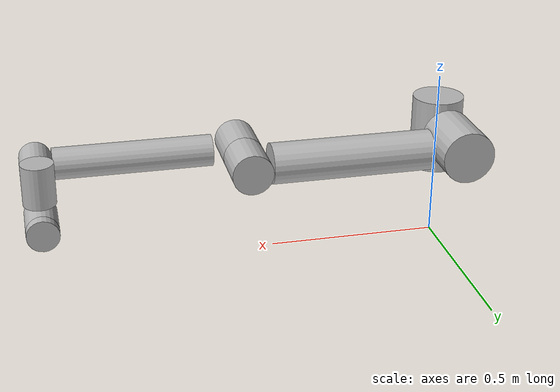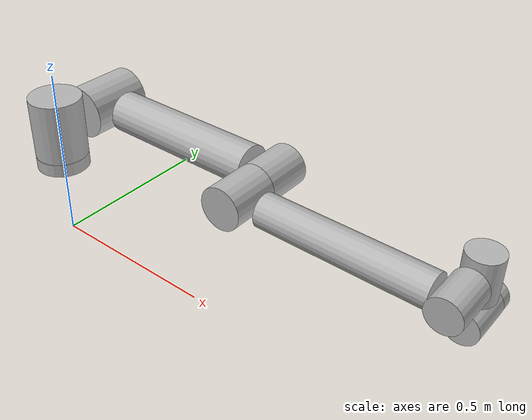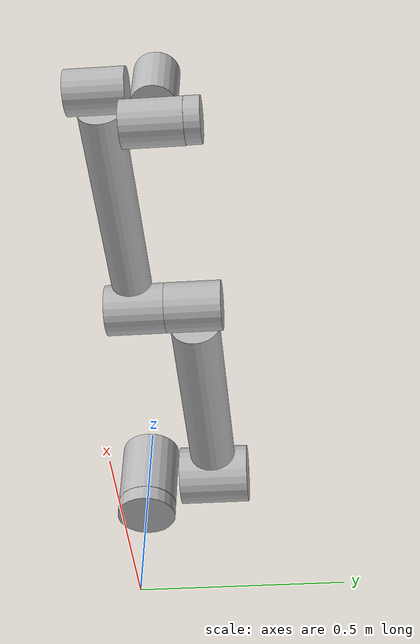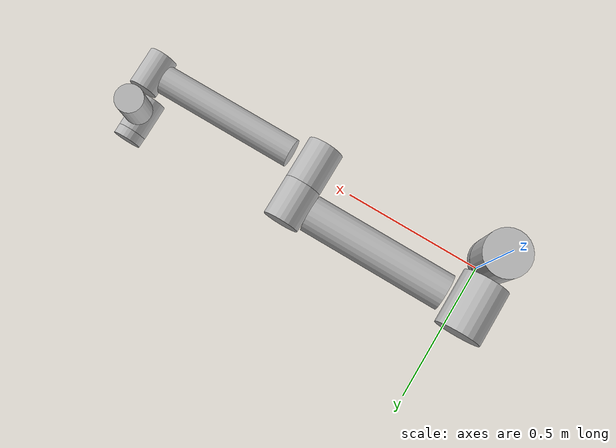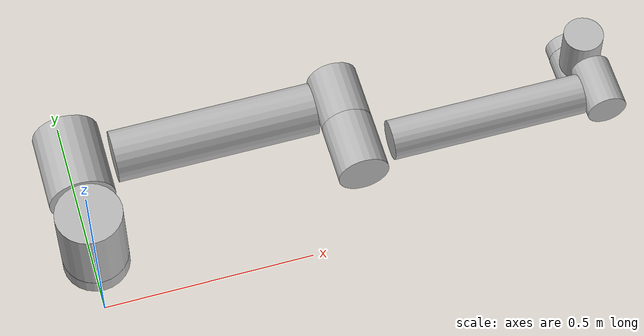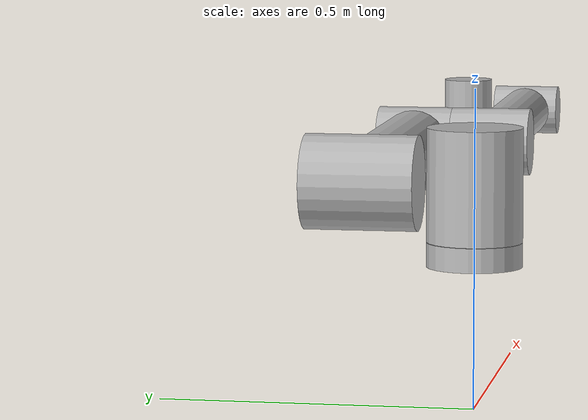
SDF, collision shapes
<?xml version='1.0'?>
<sdf version='1.5'>
  <model name='ur10'>
    <pose>0 0 0.225 0 -0 0</pose>
    <link name='base'>
      <inertial>
        <mass>4</mass>
        <inertia>
          <ixx>0.00610633</ixx>
          <ixy>0</ixy>
          <ixz>0</ixz>
          <iyy>0.00610633</iyy>
          <iyz>0</iyz>
          <izz>0.01125</izz>
        </inertia>
      </inertial>
      <collision name='collision'>
        <pose>0 0 0.019 0 -0 0</pose>
        <geometry>
          <cylinder>
            <radius>0.075</radius>
            <length>0.038</length>
          </cylinder>
        </geometry>
      </collision>
      <visual name='visual'>
        <geometry>
          <mesh>
            <uri>/home/ubb/Documents/PersonalProject/install/simple_arm/share/simple_arm/models/ur10/meshes/visual/base.dae</uri>
          </mesh>
        </geometry>
      </visual>
    </link>
    <link name='shoulder'>
      <pose>0 0 .1273 0 -0 0</pose>
      <inertial>
        <mass>7.778</mass>
        <inertia>
          <ixx>0.0314743</ixx>
          <ixy>0</ixy>
          <ixz>0</ixz>
          <iyy>0.0314743</iyy>
          <iyz>0</iyz>
          <izz>0.0218756</izz>
        </inertia>
      </inertial>
      <collision name='collision'>
        <geometry>
          <cylinder>
            <radius>0.075</radius>
            <length>0.177</length>
          </cylinder>
        </geometry>
      </collision>
      <visual name='visual'>
        <geometry>
          <mesh>
            <uri>/home/ubb/Documents/PersonalProject/install/simple_arm/share/simple_arm/models/ur10/meshes/visual/shoulder.dae</uri>
          </mesh>
        </geometry>
      </visual>
    </link>

    <link name='upper_arm'>
      <pose>0 0.220941 0.1273 3.14159 1.57079 3.14159</pose>
      <inertial>
        <pose>0 0 0.306 0 0 0</pose>
        <mass>12.93</mass>
        <inertia>
          <ixx>0.421754</ixx>
          <ixy>0</ixy>
          <ixz>0</ixz>
          <iyy>0.421754</iyy>
          <iyz>0</iyz>
          <izz>0.0363656</izz>
        </inertia>
      </inertial>

      <collision name='collision1'>
        <pose>0 -0.045 0 1.5707 0 0</pose>
        <geometry>
          <cylinder>
            <radius>0.075</radius>
            <length>0.177</length>
          </cylinder>
        </geometry>
      </collision>

      <collision name='collision2'>
        <pose>0 -0.0436 0.32 0 0 1.5707</pose>
        <geometry>
          <cylinder>
            <radius>0.058</radius>
            <length>0.461</length>
          </cylinder>
        </geometry>
      </collision>

      <collision name='collision3'>
        <pose>0 -0.040 0.613 1.5707 0 0</pose>
        <geometry>
          <cylinder>
            <radius>0.058</radius>
            <length>0.129</length>
          </cylinder>
        </geometry>
      </collision>

      <visual name='visual'>
        <geometry>
          <mesh>
            <uri>/home/ubb/Documents/PersonalProject/install/simple_arm/share/simple_arm/models/ur10/meshes/visual/upperarm.dae</uri>
          </mesh>
        </geometry>
      </visual>
    </link>

    <link name='forearm'>
      <pose>0.612 0.049041 0.1273 3.14159 1.57079 3.14159</pose>
      <inertial>
        <pose>0 0 0.28615 0 -0 0</pose>
        <mass>3.87</mass>
        <inertia>
          <ixx>0.11107</ixx>
          <ixy>0</ixy>
          <ixz>0</ixz>
          <iyy>0.11107</iyy>
          <iyz>0</iyz>
          <izz>0.0108844</izz>
        </inertia>
      </inertial>
      <collision name='collision1'>
        <pose>0 0 0.001 1.5707 0 0</pose>
        <geometry>
          <cylinder>
            <radius>0.058</radius>
            <length>0.136</length>
          </cylinder>
        </geometry>
      </collision>

      <collision name='collision2'>
        <pose>0 0 0.305 0 0 1.5707</pose>
        <geometry>
          <cylinder>
            <radius>0.045</radius>
            <length>0.447</length>
          </cylinder>
        </geometry>
      </collision>

      <collision name='collision3'>
        <pose>0 0.001 0.5735 1.5707 0 0</pose>
        <geometry>
          <cylinder>
            <radius>0.045</radius>
            <length>0.119</length>
          </cylinder>
        </geometry>
      </collision>

      <visual name='visua'>
        <geometry>
          <mesh>
            <uri>/home/ubb/Documents/PersonalProject/install/simple_arm/share/simple_arm/models/ur10/meshes/visual/forearm.dae</uri>
          </mesh>
        </geometry>
      </visual>
    </link>

    <link name='wrist_1'>
      <pose>1.1843 0.049041 0.1273 3.14159 3.58979e-09 3.14159</pose>
      <inertial>
        <mass>1.96</mass>
        <inertia>
          <ixx>0.00510825</ixx>
          <ixy>0</ixy>
          <ixz>0</ixz>
          <iyy>0.00510825</iyy>
          <iyz>0</iyz>
          <izz>0.0055125</izz>
        </inertia>
      </inertial>
      <collision name='collision'>
        <pose>0 0.115 0.0025 0 0 0</pose>
        <geometry>
          <cylinder>
            <radius>0.0455</radius>
            <length>0.119</length>
          </cylinder>
        </geometry>
      </collision>
      <visual name='visual'>
        <geometry>
          <mesh>
            <uri>/home/ubb/Documents/PersonalProject/install/simple_arm/share/simple_arm/models/ur10/meshes/visual/wrist1.dae</uri>
          </mesh>
        </geometry>
      </visual>
    </link>

    <link name='wrist_2'>
      <pose>1.1843 0.163941 0.1273 3.14159 3.58979e-09 3.14159</pose>
      <inertial>
        <mass>1.96</mass>
        <inertia>
          <ixx>0.00510825</ixx>
          <ixy>0</ixy>
          <ixz>0</ixz>
          <iyy>0.00510825</iyy>
          <iyz>0</iyz>
          <izz>0.0055125</izz>
        </inertia>
      </inertial>
      <collision name='collision'>
        <pose>0 0.002 0.11659 1.5707 0 0</pose>
        <geometry>
          <cylinder>
            <radius>0.0455</radius>
            <length>0.119</length>
          </cylinder>
        </geometry>
      </collision>
      <visual name='visual'>
        <geometry>
          <mesh>
            <uri>/home/ubb/Documents/PersonalProject/install/simple_arm/share/simple_arm/models/ur10/meshes/visual/wrist2.dae</uri>
          </mesh>
        </geometry>
      </visual>
    </link>

    <link name='wrist_3'>
      <pose>1.1843 0.163941 0.0116 3.14159 3.58979e-09 3.14159</pose>
      <inertial>
        <mass>0.202</mass>
        <inertia>
          <ixx>0.000526462</ixx>
          <ixy>0</ixy>
          <ixz>0</ixz>
          <iyy>0.000526462</iyy>
          <iyz>0</iyz>
          <izz>0.000568125</izz>
        </inertia>
      </inertial>
      <collision name='collision'>
        <pose>0 0.0765 0 1.5707 0 0</pose>
        <geometry>
          <cylinder>
            <radius>0.045</radius>
            <length>0.031</length>
          </cylinder>
        </geometry>
      </collision>
      <visual name='visual'>
        <geometry>
          <mesh>
            <uri>/home/ubb/Documents/PersonalProject/install/simple_arm/share/simple_arm/models/ur10/meshes/visual/wrist3.dae</uri>
          </mesh>
        </geometry>
      </visual>
    </link>
    <joint name="world_fixed" type="fixed">
      <parent>world</parent>
      <child>base</child>
    </joint>

    <joint name='shoulder_pan_joint' type='revolute'>
      <child>shoulder</child>
      <parent>base</parent>
      <axis>
        <xyz>0 0 1</xyz>
        <limit>
          <lower>-6.28319</lower>
          <upper>6.28319</upper>
          <effort>330</effort>
          <velocity>2.16</velocity>
        </limit>
        <use_parent_model_frame>1</use_parent_model_frame>
      </axis>
    </joint>
    <plugin filename="ignition-gazebo-joint-position-controller-system" name="ignition::gazebo::systems::JointPositionController">
      <joint_name>shoulder_pan_joint</joint_name>
      <p_gain>20</p_gain>
      <i_gain>0.05</i_gain>
      <d_gain>0.1</d_gain>
      <i_max>1</i_max>
      <i_min>-1</i_min>
      <cmd_max>1000</cmd_max>
      <cmd_min>-1000</cmd_min>
    </plugin>

    <joint name='shoulder_lift_joint' type='revolute'>
      <child>upper_arm</child>
      <parent>shoulder</parent>
      <axis>
        <xyz>0 1 0</xyz>
        <limit>
          <lower>-6.28319</lower>
          <upper>6.28319</upper>
          <effort>330</effort>
          <velocity>2.16</velocity>
        </limit>
        <use_parent_model_frame>1</use_parent_model_frame>
      </axis>
    </joint>
    <plugin filename="ignition-gazebo-joint-position-controller-system" name="ignition::gazebo::systems::JointPositionController">
      <joint_name>shoulder_lift_joint</joint_name>
      <p_gain>20</p_gain>
      <i_gain>0.05</i_gain>
      <d_gain>0.1</d_gain>
      <i_max>1</i_max>
      <i_min>-1</i_min>
      <cmd_max>1000</cmd_max>
      <cmd_min>-1000</cmd_min>
    </plugin>

    <joint name='elbow_joint' type='revolute'>
      <child>forearm</child>
      <parent>upper_arm</parent>
      <axis>
        <xyz>0 1 0</xyz>
        <limit>
          <lower>-6.28319</lower>
          <upper>6.28319</upper>
          <effort>150</effort>
          <velocity>3.15</velocity>
        </limit>
        <use_parent_model_frame>1</use_parent_model_frame>
      </axis>
    </joint>
    <plugin filename="ignition-gazebo-joint-position-controller-system" name="ignition::gazebo::systems::JointPositionController">
      <joint_name>elbow_joint</joint_name>
      <p_gain>20</p_gain>
      <i_gain>0.05</i_gain>
      <d_gain>0.1</d_gain>
      <i_max>1</i_max>
      <i_min>-1</i_min>
      <cmd_max>1000</cmd_max>
      <cmd_min>-1000</cmd_min>
    </plugin>

    <joint name='wrist_1_joint' type='revolute'>
      <child>wrist_1</child>
      <parent>forearm</parent>
      <axis>
        <xyz>0 1 0</xyz>
        <limit>
          <lower>-6.28319</lower>
          <upper>6.28319</upper>
          <effort>54</effort>
          <velocity>3.2</velocity>
        </limit>
        <use_parent_model_frame>1</use_parent_model_frame>
      </axis>
    </joint>
    <plugin filename="ignition-gazebo-joint-position-controller-system" name="ignition::gazebo::systems::JointPositionController">
      <joint_name>wrist_1_joint</joint_name>
      <p_gain>20</p_gain>
      <i_gain>0.05</i_gain>
      <d_gain>0.1</d_gain>
      <i_max>1</i_max>
      <i_min>-1</i_min>
      <cmd_max>1000</cmd_max>
      <cmd_min>-1000</cmd_min>
    </plugin>

    <joint name='wrist_2_joint' type='revolute'>
      <child>wrist_2</child>
      <parent>wrist_1</parent>
      <axis>
        <xyz>3.58979e-09 0 -1</xyz>
        <limit>
          <lower>-6.28319</lower>
          <upper>6.28319</upper>
          <effort>54</effort>
          <velocity>3.2</velocity>
        </limit>
        <use_parent_model_frame>1</use_parent_model_frame>
      </axis>
    </joint>
    <plugin filename="ignition-gazebo-joint-position-controller-system" name="ignition::gazebo::systems::JointPositionController">
      <joint_name>wrist_2_joint</joint_name>
      <p_gain>20</p_gain>
      <i_gain>0.05</i_gain>
      <d_gain>0.1</d_gain>
      <i_max>1</i_max>
      <i_min>-1</i_min>
      <cmd_max>1000</cmd_max>
      <cmd_min>-1000</cmd_min>
    </plugin>

    <joint name='wrist_3_joint' type='revolute'>
      <child>wrist_3</child>
      <parent>wrist_2</parent>
      <axis>
        <xyz>0 1 0</xyz>
        <limit>
          <lower>-6.28319</lower>
          <upper>6.28319</upper>
          <effort>54</effort>
          <velocity>3.2</velocity>
        </limit>
        <use_parent_model_frame>1</use_parent_model_frame>
      </axis>
    </joint>
    <plugin filename="ignition-gazebo-joint-position-controller-system" name="ignition::gazebo::systems::JointPositionController">
      <joint_name>wrist_3_joint</joint_name>
      <p_gain>20</p_gain>
      <i_gain>0.05</i_gain>
      <d_gain>0.1</d_gain>
      <i_max>1</i_max>
      <i_min>-1</i_min>
      <cmd_max>1000</cmd_max>
      <cmd_min>-1000</cmd_min>
    </plugin>

  </model>
</sdf>
